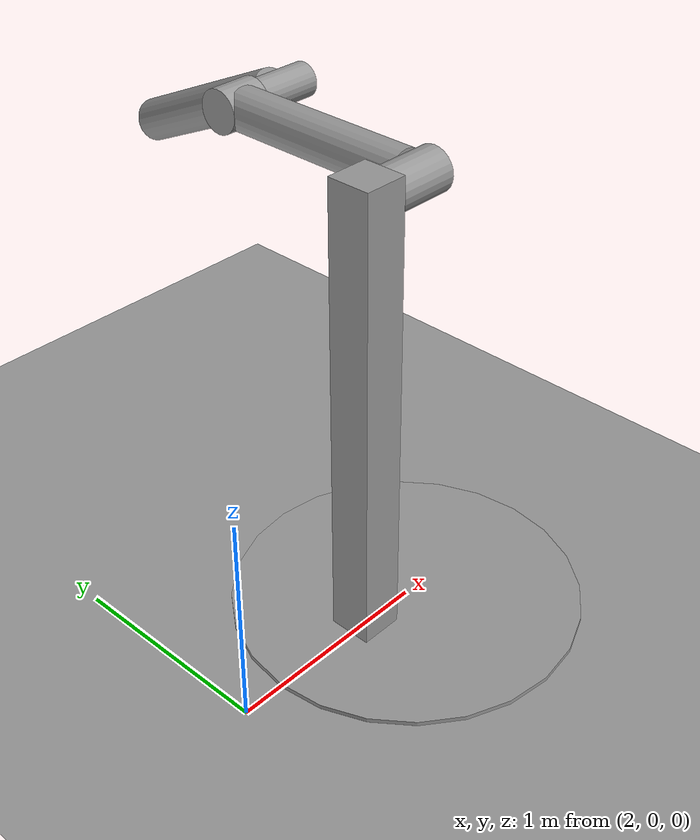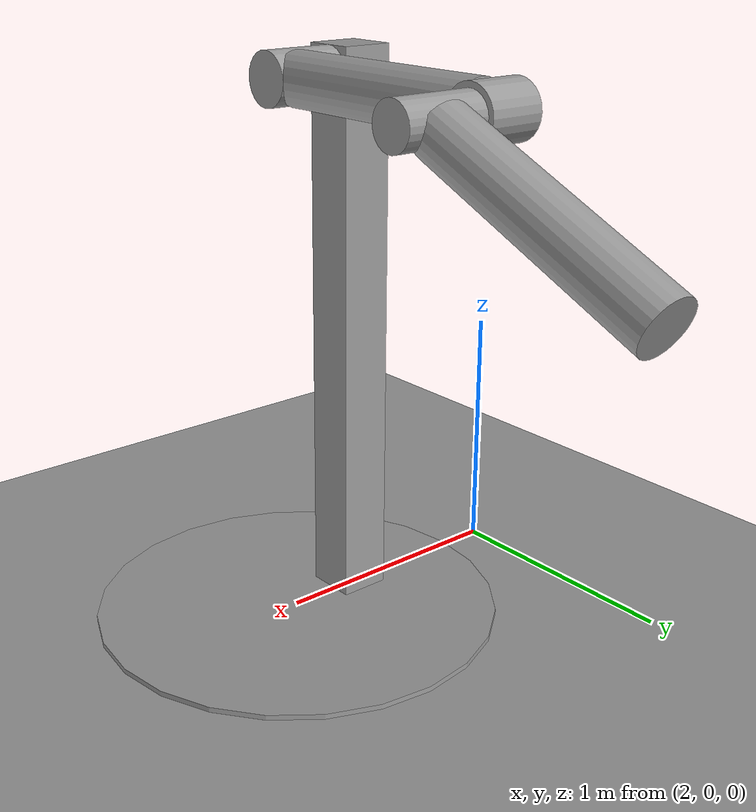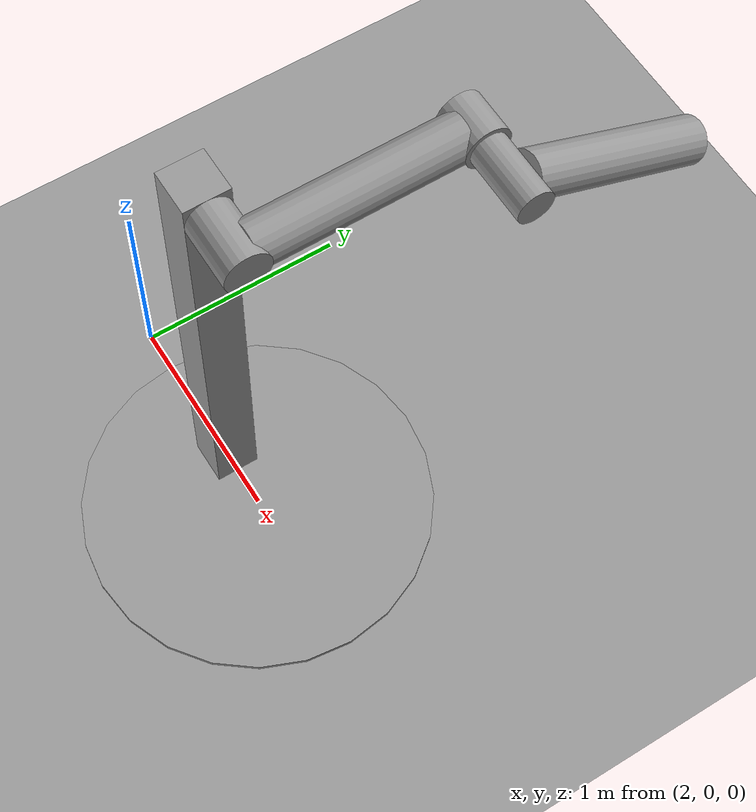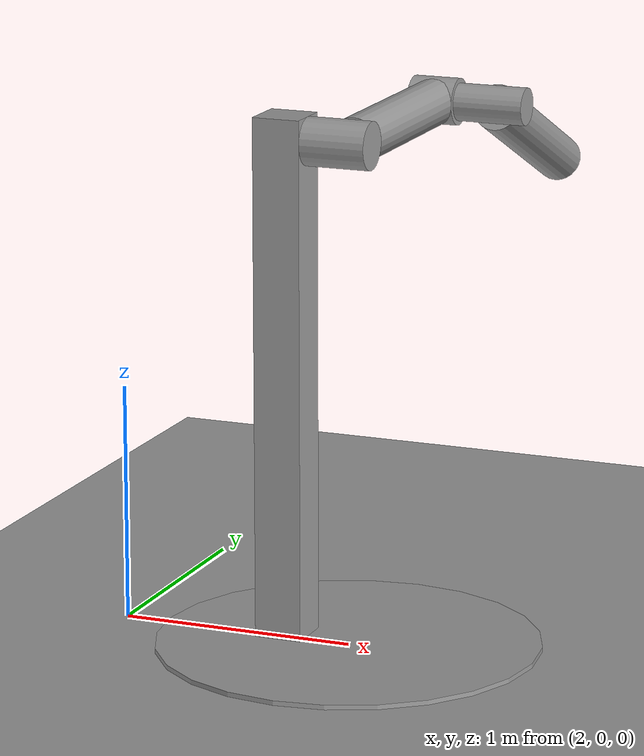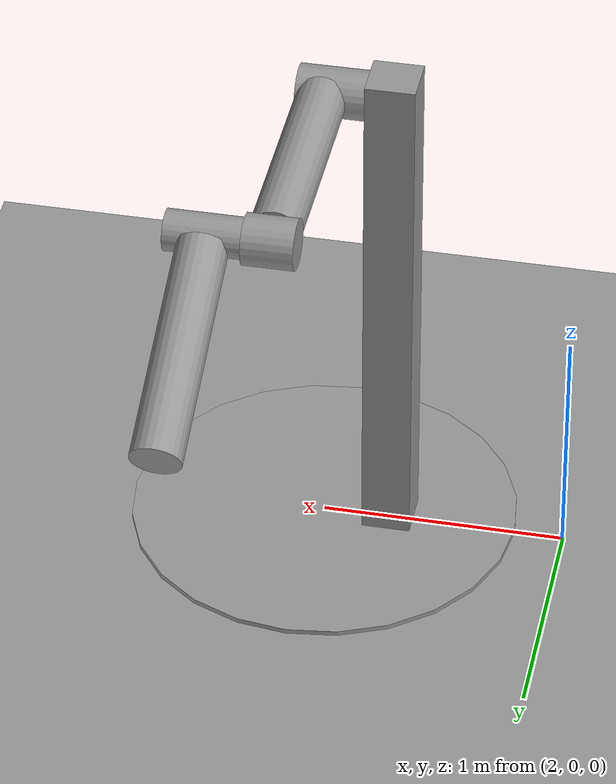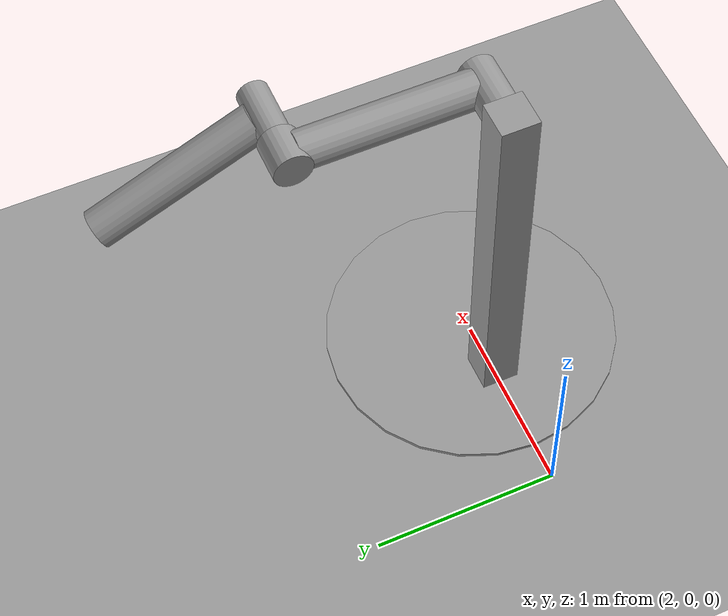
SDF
<?xml version="1.0" ?>
<sdf version="1.4">
  <world name="default">
    <include>
      <uri>model://controlit_ground_model</uri>
    </include>
    <include>
      <uri>model://Arm</uri>
      <name>model</name>
      <pose>3 0 0 0 0 0</pose>
    </include>

    <!-- define light manually so we can control its direction -->
    <light type="directional" name="sun">
      <cast_shadows>true</cast_shadows>
      <pose>10 10 10 0 -1 0</pose>
      <diffuse>0.8 0.8 0.8 1</diffuse>
      <specular>0.2 0.2 0.2 1</specular>
      <attenuation>
        <range>1000</range>
        <constant>0.9</constant>
        <linear>0.01</linear>
        <quadratic>0.001</quadratic>
      </attenuation>
      <direction>-0.5 0.1 -0.9</direction>
    </light>
  </world>
</sdf>

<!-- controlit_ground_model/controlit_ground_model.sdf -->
<sdf version="1.4">
    <model name="controlit_ground_plane">
        <static>true</static>
        <link name="link">
            <collision name="collision">
                <geometry>
                    <plane>
                        <normal>0 0 1</normal>
                        <size>100 100</size>
                    </plane>
                </geometry>
                <surface>
                    <friction>
                        <ode>
                            <mu>0.8</mu>
                        </ode>
                    </friction>
                    <bounce>
                        <restitution_coefficient>0.0</restitution_coefficient>
                    </bounce>
                    <contact>
                        <bullet>
                            <kp>50000</kp>
                            <kd>5000</kd>
                        </bullet>
                        <ode>
                            <kp>50000</kp>
                            <kd>5000</kd>
                            <max_vel>0</max_vel>
                        </ode>
                    </contact>
                </surface>
            </collision>
            <visual name="visual">
                <cast_shadows>false</cast_shadows>
                <geometry>
                    <plane>
                        <normal>0 0 1</normal>
                        <size>10 10</size>
                    </plane>
                </geometry>
                <material>
                    <script>
                        <uri>file://media/materials/scripts/gazebo.material</uri>
                        <name>Gazebo/Grey</name>
                    </script>
                </material>
            </visual>
        </link>
    </model>
</sdf>

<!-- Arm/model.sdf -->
<sdf version="1.5">
  <model name="double_pendulum_with_base">
    <link name="base">
      <inertial>
        <mass>100</mass>
      </inertial>
      <visual name="vis_plate_on_ground">
        <pose>0 0 0.01 0 0 0</pose>
        <geometry>
          <cylinder>
            <radius>0.8</radius>
            <length>0.02</length>
          </cylinder>
        </geometry>
        <material>
          <script>
            <uri>file://media/materials/scripts/gazebo.material</uri>
            <name>Gazebo/Grey</name>
          </script>
        </material>
      </visual>
      <visual name="vis_pole">
        <pose>-0.275 0 1.1 0 0 0</pose>
        <geometry>
          <box>
            <size>0.2 0.2 2.2</size>
          </box>
        </geometry>
        <material>
          <script>
            <uri>file://media/materials/scripts/gazebo.material</uri>
            <name>Gazebo/Grey</name>
          </script>
        </material>
      </visual>
      <collision name="col_plate_on_ground">
        <pose>0 0 0.01 0 0 0</pose>
        <geometry>
          <cylinder>
            <radius>0.8</radius>
            <length>0.02</length>
          </cylinder>
        </geometry>
      </collision>
      <collision name="col_pole">
        <pose>-0.275 0 1.1 0 0 0</pose>
        <geometry>
          <box>
            <size>0.2 0.2 2.2</size>
          </box>
        </geometry>
      </collision>
    </link>
    <!-- upper link, length 1, IC -90 degrees -->
    <link name="upper_link">
      <pose>0 0 2.1 -1.5708 0 0</pose>
      <self_collide>0</self_collide>
      <inertial>
        <pose>0 0 0.5 0 0 0</pose>
      </inertial>
      <visual name="vis_upper_joint">
        <pose>-0.05 0 0 0 1.5708 0</pose>
        <geometry>
          <cylinder>
            <radius>0.1</radius>
            <length>0.3</length>
          </cylinder>
        </geometry>
        <material>
          <script>
            <uri>file://media/materials/scripts/gazebo.material</uri>
            <name>Gazebo/Grey</name>
          </script>
        </material>
      </visual>
      <visual name="vis_lower_joint">
        <pose>0 0 1.0 0 1.5708 0</pose>
        <geometry>
          <cylinder>
            <radius>0.1</radius>
            <length>0.2</length>
          </cylinder>
        </geometry>
        <material>
          <script>
            <uri>file://media/materials/scripts/gazebo.material</uri>
            <name>Gazebo/Grey</name>
          </script>
        </material>
      </visual>
      <visual name="vis_cylinder">
        <pose>0 0 0.5 0 0 0</pose>
        <geometry>
          <cylinder>
            <radius>0.1</radius>
            <length>0.9</length>
          </cylinder>
        </geometry>
        <material>
          <script>
            <uri>file://media/materials/scripts/gazebo.material</uri>
            <name>Gazebo/Grey</name>
          </script>
        </material>
      </visual>
      <collision name="col_upper_joint">
        <pose>-0.05 0 0 0 1.5708 0</pose>
        <geometry>
          <cylinder>
            <radius>0.1</radius>
            <length>0.3</length>
          </cylinder>
        </geometry>
      </collision>
      <collision name="col_lower_joint">
        <pose>0 0 1.0 0 1.5708 0</pose>
        <geometry>
          <cylinder>
            <radius>0.1</radius>
            <length>0.2</length>
          </cylinder>
        </geometry>
      </collision>
      <collision name="col_cylinder">
        <pose>0 0 0.5 0 0 0</pose>
        <geometry>
          <cylinder>
            <radius>0.1</radius>
            <length>0.9</length>
          </cylinder>
        </geometry>
      </collision>
    </link>
    <!-- lower link, length 1, IC ~-120 degrees more -->
    <link name="lower_link">
      <pose>0.25 1.0 2.1 -2 0 0</pose>
      <self_collide>0</self_collide>
      <inertial>
        <pose>0 0 0.5 0 0 0</pose>
      </inertial>
      <visual name="vis_lower_joint">
        <pose>0 0 0 0 1.5708 0</pose>
        <geometry>
          <cylinder>
            <radius>0.08</radius>
            <length>0.3</length>
          </cylinder>
        </geometry>
        <material>
          <script>
            <uri>file://media/materials/scripts/gazebo.material</uri>
            <name>Gazebo/Grey</name>
          </script>
        </material>
      </visual>
      <visual name="vis_cylinder">
        <pose>0 0 0.5 0 0 0</pose>
        <geometry>
          <cylinder>
            <radius>0.1</radius>
            <length>0.9</length>
          </cylinder>
        </geometry>
        <material>
          <script>
            <uri>file://media/materials/scripts/gazebo.material</uri>
            <name>Gazebo/Grey</name>
          </script>
        </material>
      </visual>
      <collision name="col_lower_joint">
        <pose>0 0 0 0 1.5708 0</pose>
        <geometry>
          <cylinder>
            <radius>0.08</radius>
            <length>0.3</length>
          </cylinder>
        </geometry>
      </collision>
      <collision name="col_cylinder">
        <pose>0 0 0.5 0 0 0</pose>
        <geometry>
          <cylinder>
            <radius>0.1</radius>
            <length>0.9</length>
          </cylinder>
        </geometry>
      </collision>
    </link>
    <!-- pin joint for upper link, at origin of upper link -->
    <joint name="upper_joint" type="revolute">
      <parent>base</parent>
      <child>upper_link</child>
      <axis>
        <xyz>0.0 0 0</xyz>
        <use_parent_model_frame>true</use_parent_model_frame>
      </axis>
    </joint>
    <!-- pin joint for lower link, at origin of child link -->
    <joint name="lower_joint" type="revolute">
      <parent>upper_link</parent>
      <child>lower_link</child>
      <axis>
        <xyz>0.0 0 0</xyz>
        <use_parent_model_frame>true</use_parent_model_frame>
      </axis>
    </joint>
  </model>
</sdf>
